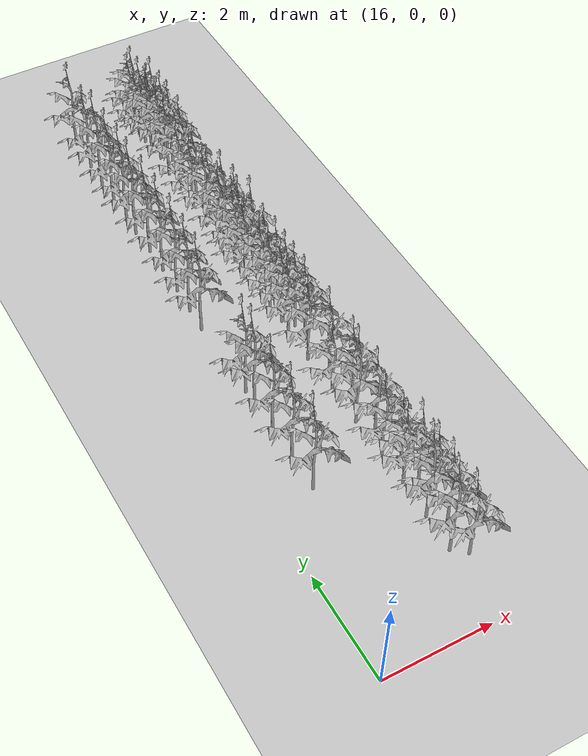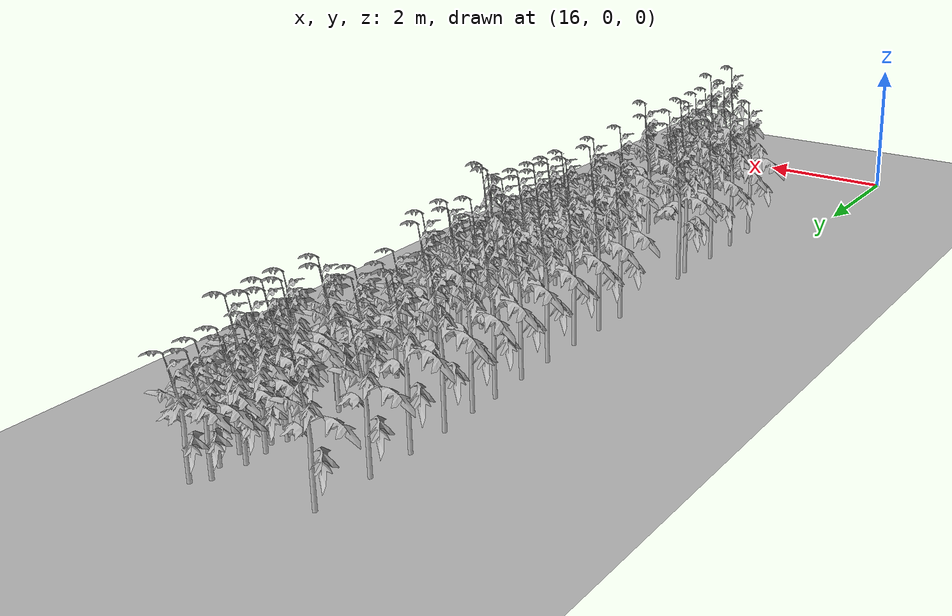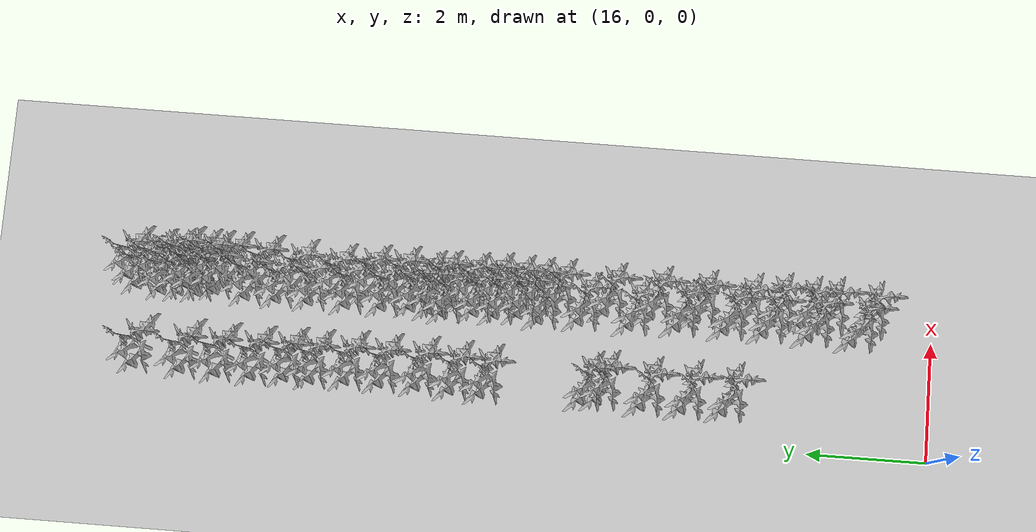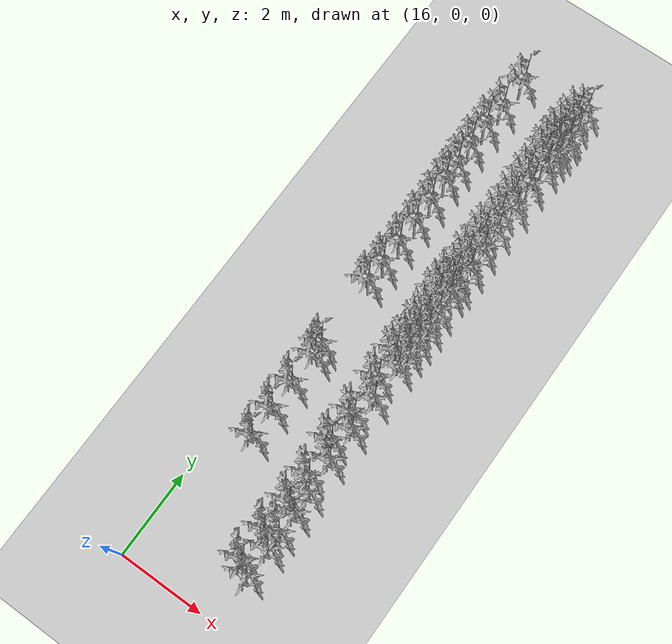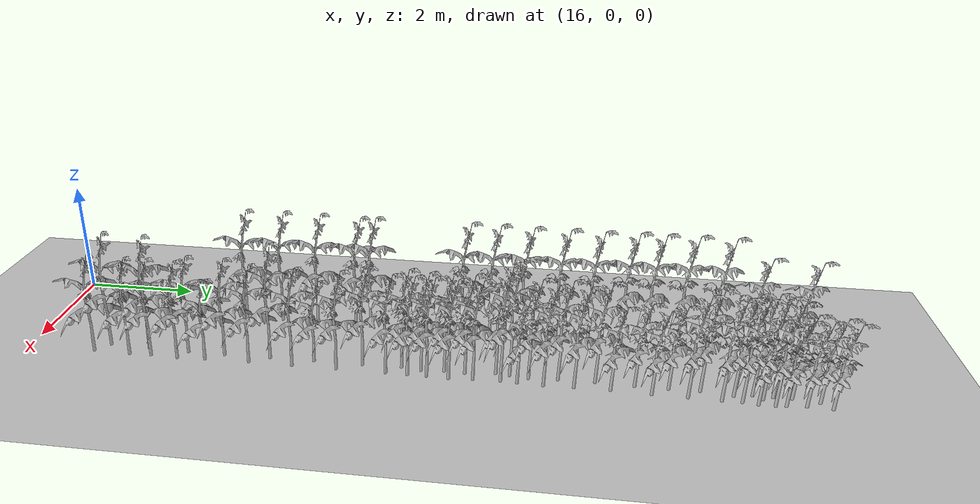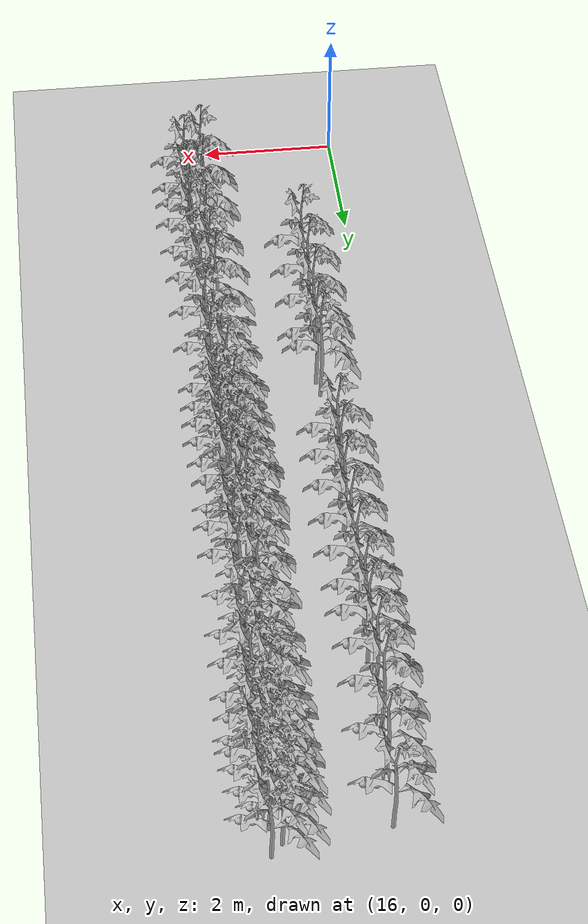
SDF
<sdf version="1.6">
 <world name="default">
  <model name="ground_plane">
   <static>1</static>
   <link name="link">
    <collision name="collision">
     <geometry><plane><normal>0 0 1</normal><size>100 100</size></plane></geometry>
     <surface>
      <contact><collide_bitmask>65535</collide_bitmask></contact>
      <friction><ode><mu>100</mu><mu2>50</mu2></ode></friction>
     </surface>
    </collision>
    <visual name="visual">
     <cast_shadows>0</cast_shadows>
     <geometry><plane><normal>0 0 1</normal><size>100 100</size></plane></geometry>
     <material>
      <script><uri>file://media/materials/scripts/gazebo.material</uri><name>Gazebo/Grey</name></script>
     </material>
    </visual>
   </link>
  </model>
  <model name="tomato_plant_small">
   <static>1</static>
   <link name="link">
    <collision name="collision">
     <geometry>
      <mesh><scale>5e-06 5e-06 5e-06</scale><uri>model://tomato_plant_small/meshes/tomato-plant.dae</uri></mesh>
     </geometry>
    </collision>
    <visual name="visual">
     <geometry>
      <mesh><scale>5e-06 5e-06 5e-06</scale><uri>model://tomato_plant_small/meshes/tomato-plant.dae</uri></mesh>
     </geometry>
    </visual>
   </link>
   <pose>18.3906 13.2946 0 0 -0 0</pose>
  </model>
  <model name="tomato_plant_small_0">
   <static>1</static>
   <link name="link">
    <collision name="collision">
     <geometry>
      <mesh><scale>5e-06 5e-06 5e-06</scale><uri>model://tomato_plant_small/meshes/tomato-plant.dae</uri></mesh>
     </geometry>
    </collision>
    <visual name="visual">
     <geometry>
      <mesh><scale>5e-06 5e-06 5e-06</scale><uri>model://tomato_plant_small/meshes/tomato-plant.dae</uri></mesh>
     </geometry>
    </visual>
   </link>
   <pose>18.2442 13.1328 0 0 -0 0</pose>
  </model>
  <model name="tomato_plant_small_1">
   <static>1</static>
   <link name="link">
    <collision name="collision">
     <geometry>
      <mesh><scale>5e-06 5e-06 5e-06</scale><uri>model://tomato_plant_small/meshes/tomato-plant.dae</uri></mesh>
     </geometry>
    </collision>
    <visual name="visual">
     <geometry>
      <mesh><scale>5e-06 5e-06 5e-06</scale><uri>model://tomato_plant_small/meshes/tomato-plant.dae</uri></mesh>
     </geometry>
    </visual>
   </link>
   <pose>18.3727 12.9067 0 0 -0 0</pose>
  </model>
  <model name="tomato_plant_small_2">
   <static>1</static>
   <link name="link">
    <collision name="collision">
     <geometry>
      <mesh><scale>5e-06 5e-06 5e-06</scale><uri>model://tomato_plant_small/meshes/tomato-plant.dae</uri></mesh>
     </geometry>
    </collision>
    <visual name="visual">
     <geometry>
      <mesh><scale>5e-06 5e-06 5e-06</scale><uri>model://tomato_plant_small/meshes/tomato-plant.dae</uri></mesh>
     </geometry>
    </visual>
   </link>
   <pose>18.177 12.7212 0 0 -0 0</pose>
  </model>
  <model name="tomato_plant_small_3">
   <static>1</static>
   <link name="link">
    <collision name="collision">
     <geometry>
      <mesh><scale>5e-06 5e-06 5e-06</scale><uri>model://tomato_plant_small/meshes/tomato-plant.dae</uri></mesh>
     </geometry>
    </collision>
    <visual name="visual">
     <geometry>
      <mesh><scale>5e-06 5e-06 5e-06</scale><uri>model://tomato_plant_small/meshes/tomato-plant.dae</uri></mesh>
     </geometry>
    </visual>
   </link>
   <pose>18.4025 12.5943 0 0 -0 0</pose>
  </model>
  <model name="tomato_plant_small_4">
   <static>1</static>
   <link name="link">
    <collision name="collision">
     <geometry>
      <mesh><scale>5e-06 5e-06 5e-06</scale><uri>model://tomato_plant_small/meshes/tomato-plant.dae</uri></mesh>
     </geometry>
    </collision>
    <visual name="visual">
     <geometry>
      <mesh><scale>5e-06 5e-06 5e-06</scale><uri>model://tomato_plant_small/meshes/tomato-plant.dae</uri></mesh>
     </geometry>
    </visual>
   </link>
   <pose>18.183 12.4332 0 0 -0 0</pose>
  </model>
  <model name="tomato_plant_medium">
   <static>1</static>
   <link name="link">
    <collision name="collision">
     <geometry>
      <mesh><scale>5e-06 5e-06 6e-06</scale><uri>model://tomato_plant_medium/meshes/tomato-plant.dae</uri></mesh>
     </geometry>
    </collision>
    <visual name="visual">
     <geometry>
      <mesh><scale>5e-06 5e-06 6e-06</scale><uri>model://tomato_plant_medium/meshes/tomato-plant.dae</uri></mesh>
     </geometry>
    </visual>
   </link>
   <pose>18.4262 12.4256 0 0 -0 0</pose>
  </model>
  <model name="tomato_plant_medium_0">
   <static>1</static>
   <link name="link">
    <collision name="collision">
     <geometry>
      <mesh><scale>5e-06 5e-06 6e-06</scale><uri>model://tomato_plant_medium/meshes/tomato-plant.dae</uri></mesh>
     </geometry>
    </collision>
    <visual name="visual">
     <geometry>
      <mesh><scale>5e-06 5e-06 6e-06</scale><uri>model://tomato_plant_medium/meshes/tomato-plant.dae</uri></mesh>
     </geometry>
    </visual>
   </link>
   <pose>18.2674 12.2643 0 0 -0 0</pose>
  </model>
  <model name="tomato_plant_small_5">
   <static>1</static>
   <link name="link">
    <collision name="collision">
     <geometry>
      <mesh><scale>5e-06 5e-06 5e-06</scale><uri>model://tomato_plant_small/meshes/tomato-plant.dae</uri></mesh>
     </geometry>
    </collision>
    <visual name="visual">
     <geometry>
      <mesh><scale>5e-06 5e-06 5e-06</scale><uri>model://tomato_plant_small/meshes/tomato-plant.dae</uri></mesh>
     </geometry>
    </visual>
   </link>
   <pose>18.4269 12.17 0 0 -0 0</pose>
  </model>
  <model name="tomato_plant_medium_1">
   <static>1</static>
   <link name="link">
    <collision name="collision">
     <geometry>
      <mesh><scale>5e-06 5e-06 6e-06</scale><uri>model://tomato_plant_medium/meshes/tomato-plant.dae</uri></mesh>
     </geometry>
    </collision>
    <visual name="visual">
     <geometry>
      <mesh><scale>5e-06 5e-06 6e-06</scale><uri>model://tomato_plant_medium/meshes/tomato-plant.dae</uri></mesh>
     </geometry>
    </visual>
   </link>
   <pose>18.1753 12.12 0 0 -0 0</pose>
  </model>
  <model name="tomato_plant_medium_2">
   <static>1</static>
   <link name="link">
    <collision name="collision">
     <geometry>
      <mesh><scale>5e-06 5e-06 6e-06</scale><uri>model://tomato_plant_medium/meshes/tomato-plant.dae</uri></mesh>
     </geometry>
    </collision>
    <visual name="visual">
     <geometry>
      <mesh><scale>5e-06 5e-06 6e-06</scale><uri>model://tomato_plant_medium/meshes/tomato-plant.dae</uri></mesh>
     </geometry>
    </visual>
   </link>
   <pose>18.3969 11.9326 0 0 -0 0</pose>
  </model>
  <model name="tomato_plant_medium_3">
   <static>1</static>
   <link name="link">
    <collision name="collision">
     <geometry>
      <mesh><scale>5e-06 5e-06 6e-06</scale><uri>model://tomato_plant_medium/meshes/tomato-plant.dae</uri></mesh>
     </geometry>
    </collision>
    <visual name="visual">
     <geometry>
      <mesh><scale>5e-06 5e-06 6e-06</scale><uri>model://tomato_plant_medium/meshes/tomato-plant.dae</uri></mesh>
     </geometry>
    </visual>
   </link>
   <pose>18.2308 11.8231 0 0 -0 0</pose>
  </model>
  <model name="tomato_plant_medium_4">
   <static>1</static>
   <link name="link">
    <collision name="collision">
     <geometry>
      <mesh><scale>5e-06 5e-06 6e-06</scale><uri>model://tomato_plant_medium/meshes/tomato-plant.dae</uri></mesh>
     </geometry>
    </collision>
    <visual name="visual">
     <geometry>
      <mesh><scale>5e-06 5e-06 6e-06</scale><uri>model://tomato_plant_medium/meshes/tomato-plant.dae</uri></mesh>
     </geometry>
    </visual>
   </link>
   <pose>18.4029 11.6188 0 0 -0 0</pose>
  </model>
  <model name="tomato_plant_medium_5">
   <static>1</static>
   <link name="link">
    <collision name="collision">
     <geometry>
      <mesh><scale>5e-06 5e-06 6e-06</scale><uri>model://tomato_plant_medium/meshes/tomato-plant.dae</uri></mesh>
     </geometry>
    </collision>
    <visual name="visual">
     <geometry>
      <mesh><scale>5e-06 5e-06 6e-06</scale><uri>model://tomato_plant_medium/meshes/tomato-plant.dae</uri></mesh>
     </geometry>
    </visual>
   </link>
   <pose>18.1705 11.3133 0 0 -0 0</pose>
  </model>
  <model name="tomato_plant_medium_6">
   <static>1</static>
   <link name="link">
    <collision name="collision">
     <geometry>
      <mesh><scale>5e-06 5e-06 6e-06</scale><uri>model://tomato_plant_medium/meshes/tomato-plant.dae</uri></mesh>
     </geometry>
    </collision>
    <visual name="visual">
     <geometry>
      <mesh><scale>5e-06 5e-06 6e-06</scale><uri>model://tomato_plant_medium/meshes/tomato-plant.dae</uri></mesh>
     </geometry>
    </visual>
   </link>
   <pose>18.3846 11.1035 0 0 -0 0</pose>
  </model>
  <model name="tomato_plant_small_6">
   <static>1</static>
   <link name="link">
    <collision name="collision">
     <geometry>
      <mesh><scale>5e-06 5e-06 5e-06</scale><uri>model://tomato_plant_small/meshes/tomato-plant.dae</uri></mesh>
     </geometry>
    </collision>
    <visual name="visual">
     <geometry>
      <mesh><scale>5e-06 5e-06 5e-06</scale><uri>model://tomato_plant_small/meshes/tomato-plant.dae</uri></mesh>
     </geometry>
    </visual>
   </link>
   <pose>18.1771 10.8197 0 0 -0 0</pose>
  </model>
  <model name="tomato_plant_small_7">
   <static>1</static>
   <link name="link">
    <collision name="collision">
     <geometry>
      <mesh><scale>5e-06 5e-06 5e-06</scale><uri>model://tomato_plant_small/meshes/tomato-plant.dae</uri></mesh>
     </geometry>
    </collision>
    <visual name="visual">
     <geometry>
      <mesh><scale>5e-06 5e-06 5e-06</scale><uri>model://tomato_plant_small/meshes/tomato-plant.dae</uri></mesh>
     </geometry>
    </visual>
   </link>
   <pose>18.3809 10.5421 0 0 -0 0</pose>
  </model>
  <model name="tomato_plant_small_8">
   <static>1</static>
   <link name="link">
    <collision name="collision">
     <geometry>
      <mesh><scale>5e-06 5e-06 5e-06</scale><uri>model://tomato_plant_small/meshes/tomato-plant.dae</uri></mesh>
     </geometry>
    </collision>
    <visual name="visual">
     <geometry>
      <mesh><scale>5e-06 5e-06 5e-06</scale><uri>model://tomato_plant_small/meshes/tomato-plant.dae</uri></mesh>
     </geometry>
    </visual>
   </link>
   <pose>18.1815 10.2855 0 0 -0 0</pose>
  </model>
  <model name="tomato_plant_small_9">
   <static>1</static>
   <link name="link">
    <collision name="collision">
     <geometry>
      <mesh><scale>5e-06 5e-06 5e-06</scale><uri>model://tomato_plant_small/meshes/tomato-plant.dae</uri></mesh>
     </geometry>
    </collision>
    <visual name="visual">
     <geometry>
      <mesh><scale>5e-06 5e-06 5e-06</scale><uri>model://tomato_plant_small/meshes/tomato-plant.dae</uri></mesh>
     </geometry>
    </visual>
   </link>
   <pose>18.3529 9.90063 0 0 -0 0</pose>
  </model>
  <model name="tomato_plant_medium_7">
   <static>1</static>
   <link name="link">
    <collision name="collision">
     <geometry>
      <mesh><scale>5e-06 5e-06 6e-06</scale><uri>model://tomato_plant_medium/meshes/tomato-plant.dae</uri></mesh>
     </geometry>
    </collision>
    <visual name="visual">
     <geometry>
      <mesh><scale>5e-06 5e-06 6e-06</scale><uri>model://tomato_plant_medium/meshes/tomato-plant.dae</uri></mesh>
     </geometry>
    </visual>
   </link>
   <pose>18.1551 9.65907 0 0 -0 0</pose>
  </model>
  <model name="tomato_plant_medium_8">
   <static>1</static>
   <link name="link">
    <collision name="collision">
     <geometry>
      <mesh><scale>5e-06 5e-06 6e-06</scale><uri>model://tomato_plant_medium/meshes/tomato-plant.dae</uri></mesh>
     </geometry>
    </collision>
    <visual name="visual">
     <geometry>
      <mesh><scale>5e-06 5e-06 6e-06</scale><uri>model://tomato_plant_medium/meshes/tomato-plant.dae</uri></mesh>
     </geometry>
    </visual>
   </link>
   <pose>18.3601 9.32044 0 0 -0 0</pose>
  </model>
  <model name="tomato_plant_medium_9">
   <static>1</static>
   <link name="link">
    <collision name="collision">
     <geometry>
      <mesh><scale>5e-06 5e-06 6e-06</scale><uri>model://tomato_plant_medium/meshes/tomato-plant.dae</uri></mesh>
     </geometry>
    </collision>
    <visual name="visual">
     <geometry>
      <mesh><scale>5e-06 5e-06 6e-06</scale><uri>model://tomato_plant_medium/meshes/tomato-plant.dae</uri></mesh>
     </geometry>
    </visual>
   </link>
   <pose>18.1626 9.06322 0 0 -0 0</pose>
  </model>
  <model name="tomato_plant_medium_10">
   <static>1</static>
   <link name="link">
    <collision name="collision">
     <geometry>
      <mesh><scale>5e-06 5e-06 6e-06</scale><uri>model://tomato_plant_medium/meshes/tomato-plant.dae</uri></mesh>
     </geometry>
    </collision>
    <visual name="visual">
     <geometry>
      <mesh><scale>5e-06 5e-06 6e-06</scale><uri>model://tomato_plant_medium/meshes/tomato-plant.dae</uri></mesh>
     </geometry>
    </visual>
   </link>
   <pose>16.9196 13.0316 0 0 -0 0</pose>
  </model>
  <model name="tomato_plant_medium_14">
   <static>1</static>
   <link name="link">
    <collision name="collision">
     <geometry>
      <mesh><scale>5e-06 5e-06 6e-06</scale><uri>model://tomato_plant_medium/meshes/tomato-plant.dae</uri></mesh>
     </geometry>
    </collision>
    <visual name="visual">
     <geometry>
      <mesh><scale>5e-06 5e-06 6e-06</scale><uri>model://tomato_plant_medium/meshes/tomato-plant.dae</uri></mesh>
     </geometry>
    </visual>
   </link>
   <pose>16.8879 12.2541 0 0 -0 0</pose>
  </model>
  <model name="tomato_plant_big">
   <static>1</static>
   <link name="link">
    <collision name="collision">
     <geometry>
      <mesh><scale>5e-06 5e-06 6e-06</scale><uri>model://tomato_plant_big/meshes/tomato-plant.dae</uri></mesh>
     </geometry>
    </collision>
    <visual name="visual">
     <geometry>
      <mesh><scale>5e-06 5e-06 7e-06</scale><uri>model://tomato_plant_big/meshes/tomato-plant.dae</uri></mesh>
     </geometry>
    </visual>
   </link>
   <pose>16.8575 11.6462 0 0 -0 0</pose>
  </model>
  <model name="tomato_plant_big_1">
   <static>1</static>
   <link name="link">
    <collision name="collision">
     <geometry>
      <mesh><scale>5e-06 5e-06 6e-06</scale><uri>model://tomato_plant_big/meshes/tomato-plant.dae</uri></mesh>
     </geometry>
    </collision>
    <visual name="visual">
     <geometry>
      <mesh><scale>5e-06 5e-06 7e-06</scale><uri>model://tomato_plant_big/meshes/tomato-plant.dae</uri></mesh>
     </geometry>
    </visual>
   </link>
   <pose>16.851 11.0689 0 0 -0 0</pose>
  </model>
  <model name="tomato_plant_big_3">
   <static>1</static>
   <link name="link">
    <collision name="collision">
     <geometry>
      <mesh><scale>5e-06 5e-06 6e-06</scale><uri>model://tomato_plant_big/meshes/tomato-plant.dae</uri></mesh>
     </geometry>
    </collision>
    <visual name="visual">
     <geometry>
      <mesh><scale>5e-06 5e-06 7e-06</scale><uri>model://tomato_plant_big/meshes/tomato-plant.dae</uri></mesh>
     </geometry>
    </visual>
   </link>
   <pose>16.8713 10.5362 0 0 -0 0</pose>
  </model>
  <model name="tomato_plant_big_5">
   <static>1</static>
   <link name="link">
    <collision name="collision">
     <geometry>
      <mesh><scale>5e-06 5e-06 6e-06</scale><uri>model://tomato_plant_big/meshes/tomato-plant.dae</uri></mesh>
     </geometry>
    </collision>
    <visual name="visual">
     <geometry>
      <mesh><scale>5e-06 5e-06 7e-06</scale><uri>model://tomato_plant_big/meshes/tomato-plant.dae</uri></mesh>
     </geometry>
    </visual>
   </link>
   <pose>16.865 10.1107 0 0 -0 0</pose>
  </model>
  <model name="tomato_plant_big_7">
   <static>1</static>
   <link name="link">
    <collision name="collision">
     <geometry>
      <mesh><scale>5e-06 5e-06 6e-06</scale><uri>model://tomato_plant_big/meshes/tomato-plant.dae</uri></mesh>
     </geometry>
    </collision>
    <visual name="visual">
     <geometry>
      <mesh><scale>5e-06 5e-06 7e-06</scale><uri>model://tomato_plant_big/meshes/tomato-plant.dae</uri></mesh>
     </geometry>
    </visual>
   </link>
   <pose>16.8909 9.54383 0 0 -0 0</pose>
  </model>
  <model name="tomato_plant_big_9">
   <static>1</static>
   <link name="link">
    <collision name="collision">
     <geometry>
      <mesh><scale>5e-06 5e-06 6e-06</scale><uri>model://tomato_plant_big/meshes/tomato-plant.dae</uri></mesh>
     </geometry>
    </collision>
    <visual name="visual">
     <geometry>
      <mesh><scale>5e-06 5e-06 7e-06</scale><uri>model://tomato_plant_big/meshes/tomato-plant.dae</uri></mesh>
     </geometry>
    </visual>
   </link>
   <pose>16.8893 8.98824 0 0 -0 0</pose>
  </model>
  <model name="tomato_plant_big_11">
   <static>1</static>
   <link name="link">
    <collision name="collision">
     <geometry>
      <mesh><scale>5e-06 5e-06 6e-06</scale><uri>model://tomato_plant_big/meshes/tomato-plant.dae</uri></mesh>
     </geometry>
    </collision>
    <visual name="visual">
     <geometry>
      <mesh><scale>5e-06 5e-06 7e-06</scale><uri>model://tomato_plant_big/meshes/tomato-plant.dae</uri></mesh>
     </geometry>
    </visual>
   </link>
   <pose>16.8886 8.38831 0 0 -0 0</pose>
  </model>
  <model name="tomato_plant_medium_16">
   <static>1</static>
   <link name="link">
    <collision name="collision">
     <geometry>
      <mesh><scale>5e-06 5e-06 6e-06</scale><uri>model://tomato_plant_medium/meshes/tomato-plant.dae</uri></mesh>
     </geometry>
    </collision>
    <visual name="visual">
     <geometry>
      <mesh><scale>5e-06 5e-06 6e-06</scale><uri>model://tomato_plant_medium/meshes/tomato-plant.dae</uri></mesh>
     </geometry>
    </visual>
   </link>
   <pose>18.3739 8.83297 0 0 -0 0</pose>
  </model>
  <model name="tomato_plant_medium_17">
   <static>1</static>
   <link name="link">
    <collision name="collision">
     <geometry>
      <mesh><scale>5e-06 5e-06 6e-06</scale><uri>model://tomato_plant_medium/meshes/tomato-plant.dae</uri></mesh>
     </geometry>
    </collision>
    <visual name="visual">
     <geometry>
      <mesh><scale>5e-06 5e-06 6e-06</scale><uri>model://tomato_plant_medium/meshes/tomato-plant.dae</uri></mesh>
     </geometry>
    </visual>
   </link>
   <pose>18.193 8.58456 0 0 -0 0</pose>
  </model>
  <model name="tomato_plant_small_10">
   <static>1</static>
   <link name="link">
    <collision name="collision">
     <geometry>
      <mesh><scale>5e-06 5e-06 5e-06</scale><uri>model://tomato_plant_small/meshes/tomato-plant.dae</uri></mesh>
     </geometry>
    </collision>
    <visual name="visual">
     <geometry>
      <mesh><scale>5e-06 5e-06 5e-06</scale><uri>model://tomato_plant_small/meshes/tomato-plant.dae</uri></mesh>
     </geometry>
    </visual>
   </link>
   <pose>18.3539 8.40984 0 0 -0 0</pose>
  </model>
  <model name="tomato_plant_big_12">
   <static>1</static>
   <link name="link">
    <collision name="collision">
     <geometry>
      <mesh><scale>5e-06 5e-06 6e-06</scale><uri>model://tomato_plant_big/meshes/tomato-plant.dae</uri></mesh>
     </geometry>
    </collision>
    <visual name="visual">
     <geometry>
      <mesh><scale>5e-06 5e-06 7e-06</scale><uri>model://tomato_plant_big/meshes/tomato-plant.dae</uri></mesh>
     </geometry>
    </visual>
   </link>
   <pose>18.1506 8.27583 0 0 -0 0</pose>
  </model>
  <model name="tomato_plant_big_13">
   <static>1</static>
   <link name="link">
    <collision name="collision">
     <geometry>
      <mesh><scale>5e-06 5e-06 6e-06</scale><uri>model://tomato_plant_big/meshes/tomato-plant.dae</uri></mesh>
     </geometry>
    </collision>
    <visual name="visual">
     <geometry>
      <mesh><scale>5e-06 5e-06 7e-06</scale><uri>model://tomato_plant_big/meshes/tomato-plant.dae</uri></mesh>
     </geometry>
    </visual>
   </link>
   <pose>18.3371 8.13851 0 0 -0 0</pose>
  </model>
  <model name="tomato_plant_medium_18">
   <static>1</static>
   <link name="link">
    <collision name="collision">
     <geometry>
      <mesh><scale>5e-06 5e-06 6e-06</scale><uri>model://tomato_plant_medium/meshes/tomato-plant.dae</uri></mesh>
     </geometry>
    </collision>
    <visual name="visual">
     <geometry>
      <mesh><scale>5e-06 5e-06 6e-06</scale><uri>model://tomato_plant_medium/meshes/tomato-plant.dae</uri></mesh>
     </geometry>
    </visual>
   </link>
   <pose>18.1249 8.04721 0 0 -0 0</pose>
  </model>
  <model name="tomato_plant_medium_19">
   <static>1</static>
   <link name="link">
    <collision name="collision">
     <geometry>
      <mesh><scale>5e-06 5e-06 6e-06</scale><uri>model://tomato_plant_medium/meshes/tomato-plant.dae</uri></mesh>
     </geometry>
    </collision>
    <visual name="visual">
     <geometry>
      <mesh><scale>5e-06 5e-06 6e-06</scale><uri>model://tomato_plant_medium/meshes/tomato-plant.dae</uri></mesh>
     </geometry>
    </visual>
   </link>
   <pose>18.3581 7.68979 0 0 -0 0</pose>
  </model>
  <model name="tomato_plant_big_15">
   <static>1</static>
   <link name="link">
    <collision name="collision">
     <geometry>
      <mesh><scale>5e-06 5e-06 6e-06</scale><uri>model://tomato_plant_big/meshes/tomato-plant.dae</uri></mesh>
     </geometry>
    </collision>
    <visual name="visual">
     <geometry>
      <mesh><scale>5e-06 5e-06 7e-06</scale><uri>model://tomato_plant_big/meshes/tomato-plant.dae</uri></mesh>
     </geometry>
    </visual>
   </link>
   <pose>16.8657 7.83324 0 0 -0 0</pose>
  </model>
  <model name="tomato_plant_big_17">
   <static>1</static>
   <link name="link">
    <collision name="collision">
     <geometry>
      <mesh><scale>5e-06 5e-06 6e-06</scale><uri>model://tomato_plant_big/meshes/tomato-plant.dae</uri></mesh>
     </geometry>
    </collision>
    <visual name="visual">
     <geometry>
      <mesh><scale>5e-06 5e-06 7e-06</scale><uri>model://tomato_plant_big/meshes/tomato-plant.dae</uri></mesh>
     </geometry>
    </visual>
   </link>
   <pose>16.8453 7.3331 0 0 -0 0</pose>
  </model>
  <model name="tomato_plant_big_21">
   <static>1</static>
   <link name="link">
    <collision name="collision">
     <geometry>
      <mesh><scale>5e-06 5e-06 6e-06</scale><uri>model://tomato_plant_big/meshes/tomato-plant.dae</uri></mesh>
     </geometry>
    </collision>
    <visual name="visual">
     <geometry>
      <mesh><scale>5e-06 5e-06 7e-06</scale><uri>model://tomato_plant_big/meshes/tomato-plant.dae</uri></mesh>
     </geometry>
    </visual>
   </link>
   <pose>16.8602 5.69264 0 0 -0 0</pose>
  </model>
  <model name="tomato_plant_medium_20">
   <static>1</static>
   <link name="link">
    <collision name="collision">
     <geometry>
      <mesh><scale>5e-06 5e-06 6e-06</scale><uri>model://tomato_plant_medium/meshes/tomato-plant.dae</uri></mesh>
     </geometry>
    </collision>
    <visual name="visual">
     <geometry>
      <mesh><scale>5e-06 5e-06 6e-06</scale><uri>model://tomato_plant_medium/meshes/tomato-plant.dae</uri></mesh>
     </geometry>
    </visual>
   </link>
   <pose>18.1876 7.54288 0 0 -0 0</pose>
  </model>
  <model name="tomato_plant_medium_21">
   <static>1</static>
   <link name="link">
    <collision name="collision">
     <geometry>
      <mesh><scale>5e-06 5e-06 6e-06</scale><uri>model://tomato_plant_medium/meshes/tomato-plant.dae</uri></mesh>
     </geometry>
    </collision>
    <visual name="visual">
     <geometry>
      <mesh><scale>5e-06 5e-06 6e-06</scale><uri>model://tomato_plant_medium/meshes/tomato-plant.dae</uri></mesh>
     </geometry>
    </visual>
   </link>
   <pose>18.3867 7.29336 0 0 -0 0</pose>
  </model>
  <model name="tomato_plant_medium_22">
   <static>1</static>
   <link name="link">
    <collision name="collision">
     <geometry>
      <mesh><scale>5e-06 5e-06 6e-06</scale><uri>model://tomato_plant_medium/meshes/tomato-plant.dae</uri></mesh>
     </geometry>
    </collision>
    <visual name="visual">
     <geometry>
      <mesh><scale>5e-06 5e-06 6e-06</scale><uri>model://tomato_plant_medium/meshes/tomato-plant.dae</uri></mesh>
     </geometry>
    </visual>
   </link>
   <pose>18.1767 7.19997 0 0 -0 0</pose>
  </model>
  <model name="tomato_plant_medium_23">
   <static>1</static>
   <link name="link">
    <collision name="collision">
     <geometry>
      <mesh><scale>5e-06 5e-06 6e-06</scale><uri>model://tomato_plant_medium/meshes/tomato-plant.dae</uri></mesh>
     </geometry>
    </collision>
    <visual name="visual">
     <geometry>
      <mesh><scale>5e-06 5e-06 6e-06</scale><uri>model://tomato_plant_medium/meshes/tomato-plant.dae</uri></mesh>
     </geometry>
    </visual>
   </link>
   <pose>18.3724 6.9311 0 0 -0 0</pose>
  </model>
  <model name="tomato_plant_medium_24">
   <static>1</static>
   <link name="link">
    <collision name="collision">
     <geometry>
      <mesh><scale>5e-06 5e-06 6e-06</scale><uri>model://tomato_plant_medium/meshes/tomato-plant.dae</uri></mesh>
     </geometry>
    </collision>
    <visual name="visual">
     <geometry>
      <mesh><scale>5e-06 5e-06 6e-06</scale><uri>model://tomato_plant_medium/meshes/tomato-plant.dae</uri></mesh>
     </geometry>
    </visual>
   </link>
   <pose>18.2114 6.81646 0 0 -0 0</pose>
  </model>
  <model name="tomato_plant_medium_25">
   <static>1</static>
   <link name="link">
    <collision name="collision">
     <geometry>
      <mesh><scale>5e-06 5e-06 6e-06</scale><uri>model://tomato_plant_medium/meshes/tomato-plant.dae</uri></mesh>
     </geometry>
    </collision>
    <visual name="visual">
     <geometry>
      <mesh><scale>5e-06 5e-06 6e-06</scale><uri>model://tomato_plant_medium/meshes/tomato-plant.dae</uri></mesh>
     </geometry>
    </visual>
   </link>
   <pose>18.365 6.61197 0 0 -0 0</pose>
  </model>
  <model name="tomato_plant_medium_26">
   <static>1</static>
   <link name="link">
    <collision name="collision">
     <geometry>
      <mesh><scale>5e-06 5e-06 6e-06</scale><uri>model://tomato_plant_medium/meshes/tomato-plant.dae</uri></mesh>
     </geometry>
    </collision>
    <visual name="visual">
     <geometry>
      <mesh><scale>5e-06 5e-06 6e-06</scale><uri>model://tomato_plant_medium/meshes/tomato-plant.dae</uri></mesh>
     </geometry>
    </visual>
   </link>
   <pose>18.1476 6.48023 0 0 -0 0</pose>
  </model>
  <model name="tomato_plant_medium_27">
   <static>1</static>
   <link name="link">
    <collision name="collision">
     <geometry>
      <mesh><scale>5e-06 5e-06 6e-06</scale><uri>model://tomato_plant_medium/meshes/tomato-plant.dae</uri></mesh>
     </geometry>
    </collision>
    <visual name="visual">
     <geometry>
      <mesh><scale>5e-06 5e-06 6e-06</scale><uri>model://tomato_plant_medium/meshes/tomato-plant.dae</uri></mesh>
     </geometry>
    </visual>
   </link>
   <pose>18.3649 6.24824 0 0 -0 0</pose>
  </model>
  <model name="tomato_plant_big_23">
   <static>1</static>
   <link name="link">
    <collision name="collision">
     <geometry>
      <mesh><scale>5e-06 5e-06 6e-06</scale><uri>model://tomato_plant_big/meshes/tomato-plant.dae</uri></mesh>
     </geometry>
    </collision>
    <visual name="visual">
     <geometry>
      <mesh><scale>5e-06 5e-06 7e-06</scale><uri>model://tomato_plant_big/meshes/tomato-plant.dae</uri></mesh>
     </geometry>
    </visual>
   </link>
   <pose>16.8918 5.43474 0 0 -0 0</pose>
  </model>
  <model name="tomato_plant_big_25">
   <static>1</static>
   <link name="link">
    <collision name="collision">
     <geometry>
      <mesh><scale>5e-06 5e-06 6e-06</scale><uri>model://tomato_plant_big/meshes/tomato-plant.dae</uri></mesh>
     </geometry>
    </collision>
    <visual name="visual">
     <geometry>
      <mesh><scale>5e-06 5e-06 7e-06</scale><uri>model://tomato_plant_big/meshes/tomato-plant.dae</uri></mesh>
     </geometry>
    </visual>
   </link>
   <pose>16.8466 4.72193 0 0 -0 0</pose>
  </model>
  <model name="tomato_plant_big_27">
   <static>1</static>
   <link name="link">
    <collision name="collision">
     <geometry>
      <mesh><scale>5e-06 5e-06 6e-06</scale><uri>model://tomato_plant_big/meshes/tomato-plant.dae</uri></mesh>
     </geometry>
    </collision>
    <visual name="visual">
     <geometry>
      <mesh><scale>5e-06 5e-06 7e-06</scale><uri>model://tomato_plant_big/meshes/tomato-plant.dae</uri></mesh>
     </geometry>
    </visual>
   </link>
   <pose>16.8454 4.06482 0 0 -0 0</pose>
  </model>
  <model name="tomato_plant_big_29">
   <static>1</static>
   <link name="link">
    <collision name="collision">
     <geometry>
      <mesh><scale>5e-06 5e-06 6e-06</scale><uri>model://tomato_plant_big/meshes/tomato-plant.dae</uri></mesh>
     </geometry>
    </collision>
    <visual name="visual">
     <geometry>
      <mesh><scale>5e-06 5e-06 7e-06</scale><uri>model://tomato_plant_big/meshes/tomato-plant.dae</uri></mesh>
     </geometry>
    </visual>
   </link>
   <pose>16.8595 3.39617 0 0 -0 0</pose>
  </model>
  <model name="tomato_plant_medium_32">
   <static>1</static>
   <link name="link">
    <collision name="collision">
     <geometry>
      <mesh><scale>5e-06 5e-06 6e-06</scale><uri>model://tomato_plant_medium/meshes/tomato-plant.dae</uri></mesh>
     </geometry>
    </collision>
    <visual name="visual">
     <geometry>
      <mesh><scale>5e-06 5e-06 6e-06</scale><uri>model://tomato_plant_medium/meshes/tomato-plant.dae</uri></mesh>
     </geometry>
    </visual>
   </link>
   <pose>18.1739 5.82004 0 0 -0 0</pose>
  </model>
  <model name="tomato_plant_medium_33">
   <static>1</static>
   <link name="link">
    <collision name="collision">
     <geometry>
      <mesh><scale>5e-06 5e-06 6e-06</scale><uri>model://tomato_plant_medium/meshes/tomato-plant.dae</uri></mesh>
     </geometry>
    </collision>
    <visual name="visual">
     <geometry>
      <mesh><scale>5e-06 5e-06 6e-06</scale><uri>model://tomato_plant_medium/meshes/tomato-plant.dae</uri></mesh>
     </geometry>
    </visual>
   </link>
   <pose>18.3653 5.41338 0 0 -0 0</pose>
  </model>
  <model name="tomato_plant_small_11">
   <static>1</static>
   <link name="link">
    <collision name="collision">
     <geometry>
      <mesh><scale>5e-06 5e-06 5e-06</scale><uri>model://tomato_plant_small/meshes/tomato-plant.dae</uri></mesh>
     </geometry>
    </collision>
    <visual name="visual">
     <geometry>
      <mesh><scale>5e-06 5e-06 5e-06</scale><uri>model://tomato_plant_small/meshes/tomato-plant.dae</uri></mesh>
     </geometry>
    </visual>
   </link>
   <pose>18.175 4.98787 0 0 -0 0</pose>
  </model>
  <model name="tomato_plant_medium_34">
   <static>1</static>
   <link name="link">
    <collision name="collision">
     <geometry>
      <mesh><scale>5e-06 5e-06 6e-06</scale><uri>model://tomato_plant_medium/meshes/tomato-plant.dae</uri></mesh>
     </geometry>
    </collision>
    <visual name="visual">
     <geometry>
      <mesh><scale>5e-06 5e-06 6e-06</scale><uri>model://tomato_plant_medium/meshes/tomato-plant.dae</uri></mesh>
     </geometry>
    </visual>
   </link>
   <pose>18.3683 4.65636 0 0 -0 0</pose>
  </model>
  <model name="tomato_plant_big_38">
   <static>1</static>
   <link name="link">
    <collision name="collision">
     <geometry>
      <mesh><scale>5e-06 5e-06 6e-06</scale><uri>model://tomato_plant_big/meshes/tomato-plant.dae</uri></mesh>
     </geometry>
    </collision>
    <visual name="visual">
     <geometry>
      <mesh><scale>5e-06 5e-06 7e-06</scale><uri>model://tomato_plant_big/meshes/tomato-plant.dae</uri></mesh>
     </geometry>
    </visual>
   </link>
   <pose>18.185 4.22717 0 0 -0 0</pose>
  </model>
  <model name="tomato_plant_medium_35">
   <static>1</static>
   <link name="link">
    <collision name="collision">
     <geometry>
      <mesh><scale>5e-06 5e-06 6e-06</scale><uri>model://tomato_plant_medium/meshes/tomato-plant.dae</uri></mesh>
     </geometry>
    </collision>
    <visual name="visual">
     <geometry>
      <mesh><scale>5e-06 5e-06 6e-06</scale><uri>model://tomato_plant_medium/meshes/tomato-plant.dae</uri></mesh>
     </geometry>
    </visual>
   </link>
   <pose>18.3633 3.9067 0 0 -0 0</pose>
  </model>
  <model name="tomato_plant_medium_36">
   <static>1</static>
   <link name="link">
    <collision name="collision">
     <geometry>
      <mesh><scale>5e-06 5e-06 6e-06</scale><uri>model://tomato_plant_medium/meshes/tomato-plant.dae</uri></mesh>
     </geometry>
    </collision>
    <visual name="visual">
     <geometry>
      <mesh><scale>5e-06 5e-06 6e-06</scale><uri>model://tomato_plant_medium/meshes/tomato-plant.dae</uri></mesh>
     </geometry>
    </visual>
   </link>
   <pose>18.203 3.43071 0 0 -0 0</pose>
  </model>
  <model name="tomato_plant_small_12">
   <static>1</static>
   <link name="link">
    <collision name="collision">
     <geometry>
      <mesh><scale>5e-06 5e-06 5e-06</scale><uri>model://tomato_plant_small/meshes/tomato-plant.dae</uri></mesh>
     </geometry>
    </collision>
    <visual name="visual">
     <geometry>
      <mesh><scale>5e-06 5e-06 5e-06</scale><uri>model://tomato_plant_small/meshes/tomato-plant.dae</uri></mesh>
     </geometry>
    </visual>
   </link>
   <pose>18.3881 3.14602 0 0 -0 0</pose>
  </model>
  <model name="tomato_plant_medium_37">
   <static>1</static>
   <link name="link">
    <collision name="collision">
     <geometry>
      <mesh><scale>5e-06 5e-06 6e-06</scale><uri>model://tomato_plant_medium/meshes/tomato-plant.dae</uri></mesh>
     </geometry>
    </collision>
    <visual name="visual">
     <geometry>
      <mesh><scale>5e-06 5e-06 6e-06</scale><uri>model://tomato_plant_medium/meshes/tomato-plant.dae</uri></mesh>
     </geometry>
    </visual>
   </link>
   <pose>18.2039 2.78617 0 0 -0 0</pose>
  </model>
  <model name="tomato_plant_medium_38">
   <static>1</static>
   <link name="link">
    <collision name="collision">
     <geometry>
      <mesh><scale>5e-06 5e-06 6e-06</scale><uri>model://tomato_plant_medium/meshes/tomato-plant.dae</uri></mesh>
     </geometry>
    </collision>
    <visual name="visual">
     <geometry>
      <mesh><scale>5e-06 5e-06 6e-06</scale><uri>model://tomato_plant_medium/meshes/tomato-plant.dae</uri></mesh>
     </geometry>
    </visual>
   </link>
   <pose>18.4156 2.66617 0 0 -0 0</pose>
  </model>
  <model name="tomato_plant_big_39">
   <static>1</static>
   <link name="link">
    <collision name="collision">
     <geometry>
      <mesh><scale>5e-06 5e-06 6e-06</scale><uri>model://tomato_plant_big/meshes/tomato-plant.dae</uri></mesh>
     </geometry>
    </collision>
    <visual name="visual">
     <geometry>
      <mesh><scale>5e-06 5e-06 7e-06</scale><uri>model://tomato_plant_big/meshes/tomato-plant.dae</uri></mesh>
     </geometry>
    </visual>
   </link>
   <pose>18.1812 2.07186 0 0 -0 0</pose>
  </model>
  <model name="tomato_plant_medium_39">
   <static>1</static>
   <link name="link">
    <collision name="collision">
     <geometry>
      <mesh><scale>5e-06 5e-06 6e-06</scale><uri>model://tomato_plant_medium/meshes/tomato-plant.dae</uri></mesh>
     </geometry>
    </collision>
    <visual name="visual">
     <geometry>
      <mesh><scale>5e-06 5e-06 6e-06</scale><uri>model://tomato_plant_medium/meshes/tomato-plant.dae</uri></mesh>
     </geometry>
    </visual>
   </link>
   <pose>18.3933 2.19028 0 0 -0 0</pose>
  </model>
  <model name="tomato_plant_medium_40">
   <static>1</static>
   <link name="link">
    <collision name="collision">
     <geometry>
      <mesh><scale>5e-06 5e-06 6e-06</scale><uri>model://tomato_plant_medium/meshes/tomato-plant.dae</uri></mesh>
     </geometry>
    </collision>
    <visual name="visual">
     <geometry>
      <mesh><scale>5e-06 5e-06 6e-06</scale><uri>model://tomato_plant_medium/meshes/tomato-plant.dae</uri></mesh>
     </geometry>
    </visual>
   </link>
   <pose>18.4111 1.81347 0 0 -0 0</pose>
  </model>
  <model name="tomato_plant_big_40">
   <static>1</static>
   <link name="link">
    <collision name="collision">
     <geometry>
      <mesh><scale>5e-06 5e-06 6e-06</scale><uri>model://tomato_plant_big/meshes/tomato-plant.dae</uri></mesh>
     </geometry>
    </collision>
    <visual name="visual">
     <geometry>
      <mesh><scale>5e-06 5e-06 7e-06</scale><uri>model://tomato_plant_big/meshes/tomato-plant.dae</uri></mesh>
     </geometry>
    </visual>
   </link>
   <pose>18.1522 1.36288 0 0 -0 0</pose>
  </model>
  <model name="tomato_plant_medium_41">
   <static>1</static>
   <link name="link">
    <collision name="collision">
     <geometry>
      <mesh><scale>5e-06 5e-06 6e-06</scale><uri>model://tomato_plant_medium/meshes/tomato-plant.dae</uri></mesh>
     </geometry>
    </collision>
    <visual name="visual">
     <geometry>
      <mesh><scale>5e-06 5e-06 6e-06</scale><uri>model://tomato_plant_medium/meshes/tomato-plant.dae</uri></mesh>
     </geometry>
    </visual>
   </link>
   <pose>18.3908 1.1661 0 0 -0 0</pose>
  </model>
 </world>
</sdf>
